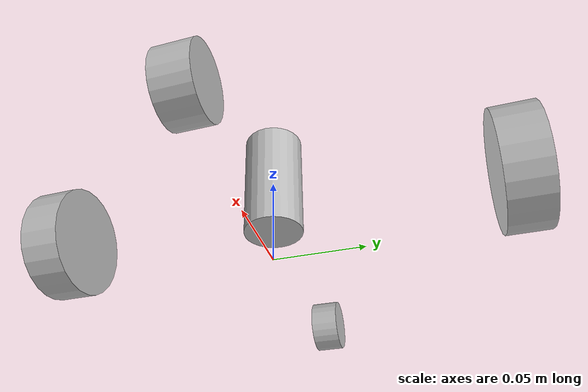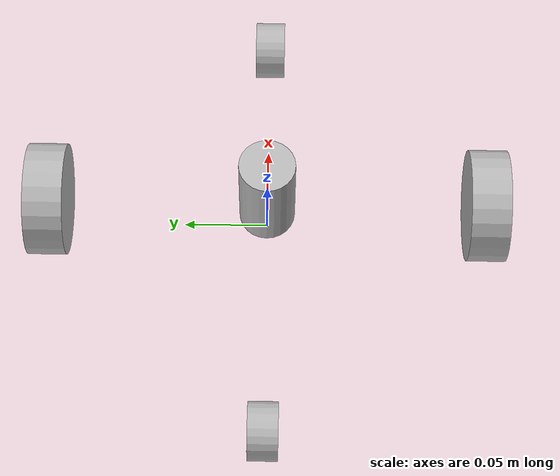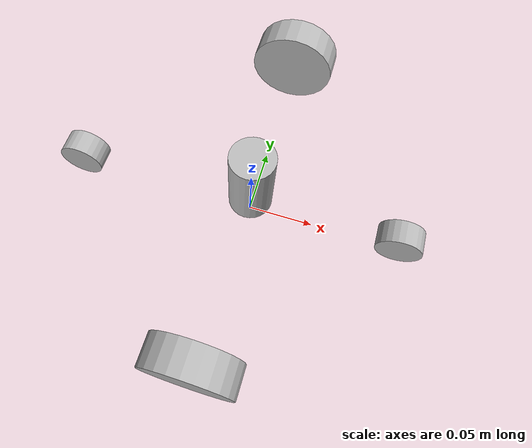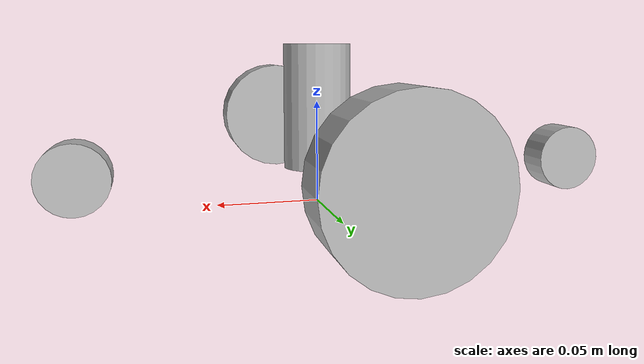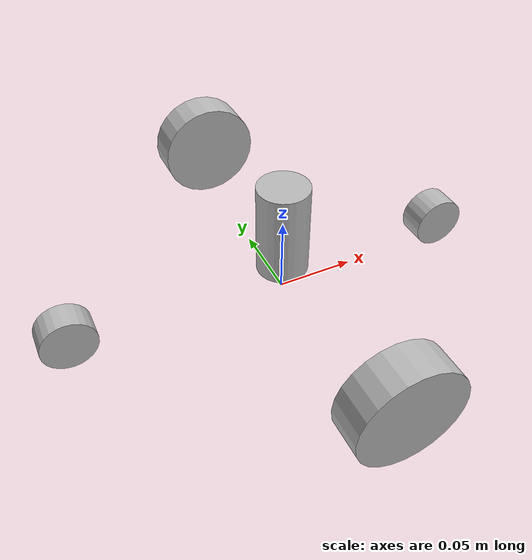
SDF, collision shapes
<?xml version="1.0" ?>
<sdf version="1.5">
  <model name="kobuki">

    <link name="base">
      <inertial>
        <pose>0.001453 -0.000453 0.03 0 0 0</pose>
        <inertia>
          <ixx>0.058640</ixx>
          <ixy>0.000124</ixy>
          <ixz>0.000615</ixz>
          <iyy>0.058786</iyy>
          <iyz>0.000014</iyz>
          <izz>1.532440</izz>
        </inertia>
        <mass>2.234000</mass>
      </inertial>
      <collision name="base_collision">
        <pose>0 0 0.047800 0 0 0</pose>
        <geometry>
          <cylinder>
            <radius>0.016495</radius>
            <length>0.061163</length>
          </cylinder>
        </geometry>
      </collision>
      <visual name="base_visual">
        <pose>0 0 0.06 0 0 0</pose>
        <geometry>
          <mesh>
            <uri>model://kobuki/meshes/main_body.dae</uri>
          </mesh>
        </geometry>
      </visual>

      <collision name="front_wheel_collision">
        <pose>0.115 0 0.017000 0 1.570700 1.570700</pose>
        <geometry>
          <cylinder>
            <radius>0.017</radius>
            <length>0.0176</length>
          </cylinder>
        </geometry>
        <surface>
          <friction>
            <ode>
              <mu>0</mu>
              <mu2>0</mu2>
              <fdir1>0 0 0</fdir1>
              <slip1>0</slip1>
              <slip2>0</slip2>
            </ode>
          </friction>
        </surface>
      </collision>

      <collision name="rear_wheel_collision">
        <pose>-0.138 0 0.017 0 1.5707 1.5707</pose>
        <geometry>
          <cylinder>
            <radius>0.017</radius>
            <length>0.0176</length>
          </cylinder>
        </geometry>
        <surface>
          <friction>
            <ode>
              <mu>0</mu>
              <mu2>0</mu2>
              <fdir1>0 0 0</fdir1>
              <slip1>0</slip1>
              <slip2>0</slip2>
            </ode>
          </friction>
        </surface>
      </collision>

      <sensor name="left_cliff_sensor" type="ray">
        <pose>0.070000 0.140000 0.027000 0 1.570790 0</pose>
        <ray>
          <scan>
            <horizontal>
              <samples>1</samples>
              <resolution>1.000000</resolution>
              <min_angle>0</min_angle>
              <max_angle>0</max_angle>
            </horizontal>
          </scan>
          <range>
            <min>0.010000</min>
            <max>0.040000</max>
            <resolution>0.100000</resolution>
          </range>
        </ray>
      </sensor>
      <sensor name="leftfront_cliff_sensor" type="ray">
        <pose>0.150000 0.040000 0.027000 0 1.570790 0</pose>
        <ray>
          <scan>
            <horizontal>
              <samples>1</samples>
              <resolution>1.000000</resolution>
              <min_angle>0</min_angle>
              <max_angle>0</max_angle>
            </horizontal>
          </scan>
          <range>
            <min>0.010000</min>
            <max>0.040000</max>
            <resolution>0.100000</resolution>
          </range>
        </ray>
      </sensor>
      <sensor name="right_cliff_sensor" type="ray">
        <pose>0.070000 -0.140000 0.027000 0 1.570790 0</pose>
        <ray>
          <scan>
            <horizontal>
              <samples>1</samples>
              <resolution>1.000000</resolution>
              <min_angle>0</min_angle>
              <max_angle>0</max_angle>
            </horizontal>
          </scan>
          <range>
            <min>0.010000</min>
            <max>0.040000</max>
            <resolution>0.100000</resolution>
          </range>
        </ray>
      </sensor>
      <sensor name="rightfront_cliff_sensor" type="ray">
        <pose>0.150000 -0.040000 0.027000 0 1.570790 0</pose>
        <ray>
          <scan>
            <horizontal>
              <samples>1</samples>
              <resolution>1.000000</resolution>
              <min_angle>0</min_angle>
              <max_angle>0</max_angle>
            </horizontal>
          </scan>
          <range>
            <min>0.010000</min>
            <max>0.040000</max>
            <resolution>0.100000</resolution>
          </range>
        </ray>
      </sensor>
      <sensor name="wall_sensor" type="ray">
        <pose>0.090000 -0.120000 0.059000 0 0 -1.000000</pose>
        <ray>
          <scan>
            <horizontal>
              <samples>1</samples>
              <resolution>1.000000</resolution>
              <min_angle>0</min_angle>
              <max_angle>0</max_angle>
            </horizontal>
          </scan>
          <range>
            <min>0.016000</min>
            <max>0.040000</max>
            <resolution>0.100000</resolution>
          </range>
        </ray>
      </sensor>
    </link>

    <link name="left_wheel">
      <pose>0 0.130000 0.032000 0 0 0</pose>
      <inertial>
        <inertia>
          <ixx>0.001000</ixx>
          <ixy>0</ixy>
          <ixz>0</ixz>
          <iyy>0.001000</iyy>
          <iyz>0</iyz>
          <izz>0.001000</izz>
        </inertia>
        <mass>0.010000</mass>
      </inertial>
      <collision name="left_wheel_collision">
        <pose>0 0 0 0 1.570700 1.570700</pose>
        <geometry>
          <cylinder>
            <radius>0.033000</radius>
            <length>0.023000</length>
          </cylinder>
        </geometry>
        <surface>
          <friction>
            <ode>
              <mu>10</mu>
              <mu2>10</mu2>
              <fdir1>0 0 0</fdir1>
              <slip1>0</slip1>
              <slip2>0</slip2>
            </ode>
          </friction>
        </surface>
      </collision>
      <visual name="visual">
        <pose>0 0 0 0 1.570700 1.570700</pose>
        <geometry>
          <mesh>
            <uri>model://kobuki/meshes/wheel.dae</uri>
          </mesh>
        </geometry>
      </visual>
    </link>

    <link name="right_wheel">
      <pose>0 -0.130000 0.032000 0 0 0</pose>
      <inertial>
        <inertia>
          <ixx>0.001000</ixx>
          <ixy>0</ixy>
          <ixz>0</ixz>
          <iyy>0.001000</iyy>
          <iyz>0</iyz>
          <izz>0.001000</izz>
        </inertia>
        <mass>0.010000</mass>
      </inertial>
      <collision name="right_wheel_collision">
        <pose>0 0 0 0 1.570700 1.570700</pose>
        <geometry>
          <cylinder>
            <radius>0.033000</radius>
            <length>0.023000</length>
          </cylinder>
        </geometry>
        <surface>
          <friction>
            <ode>
              <mu>10</mu>
              <mu2>10</mu2>
              <fdir1>0 0 0</fdir1>
              <slip1>0</slip1>
              <slip2>0</slip2>
            </ode>
          </friction>
        </surface>
      </collision>
      <visual name="visual">
        <pose>0 0 0 0 1.570700 1.570700</pose>
        <geometry>
          <mesh>
            <uri>model://kobuki/meshes/wheel.dae</uri>
          </mesh>
        </geometry>
      </visual>
    </link>

    <joint name="left_wheel_joint" type="revolute">
      <parent>base</parent>
      <child>left_wheel</child>
      <axis>
        <xyz>0 1 0</xyz>
        <use_parent_model_frame>true</use_parent_model_frame>
      </axis>
    </joint>

    <joint name="right_wheel_joint" type="revolute">
      <parent>base</parent>
      <child>right_wheel</child>
      <axis>
        <xyz>0 1 0</xyz>
        <use_parent_model_frame>true</use_parent_model_frame>
      </axis>
    </joint>

  </model>
</sdf>
